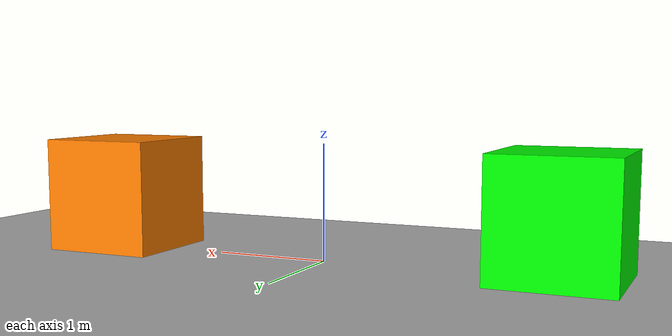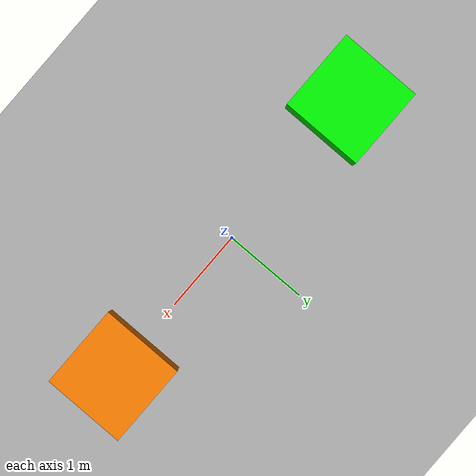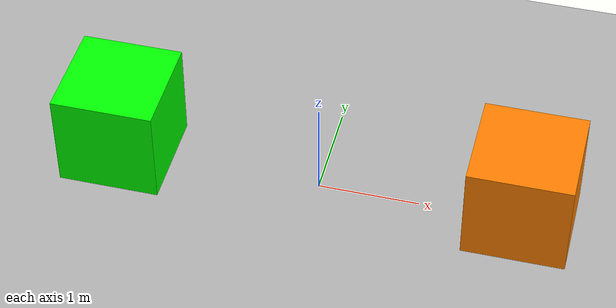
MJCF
<mujoco>
  <option gravity="0 0 -9.81" />
  <worldbody>
    <body name="object_3" pos="0 0 -0.1">
      <geom type="plane" size="20 20 0.1" rgba="0.7 0.7 0.7 1" friction="1 1 1" />
    </body>
    <body name="object_1" pos="-2 0 0.5">
      <geom type="box" size="0.5 0.5 0.5" density="1" rgba="0 1 0 1" friction="0.2 0.2 0.2" />
      <joint name="object_1_joint" type="free" />
    </body>
    <body name="object_2" pos="2 0 0.5">
      <geom type="box" size="0.5 0.5 0.5" density="1" rgba="1 0.5 0 1" friction="1 1 1" />
      <joint name="object_2_joint" type="free" />
    </body>
  </worldbody>
</mujoco>
